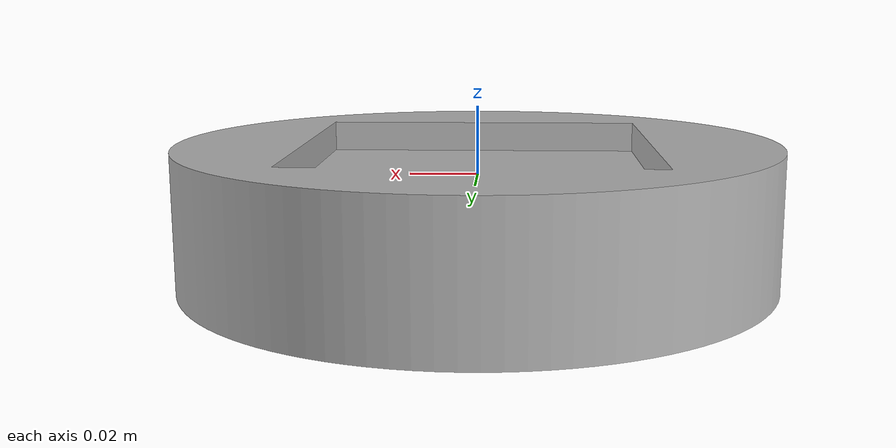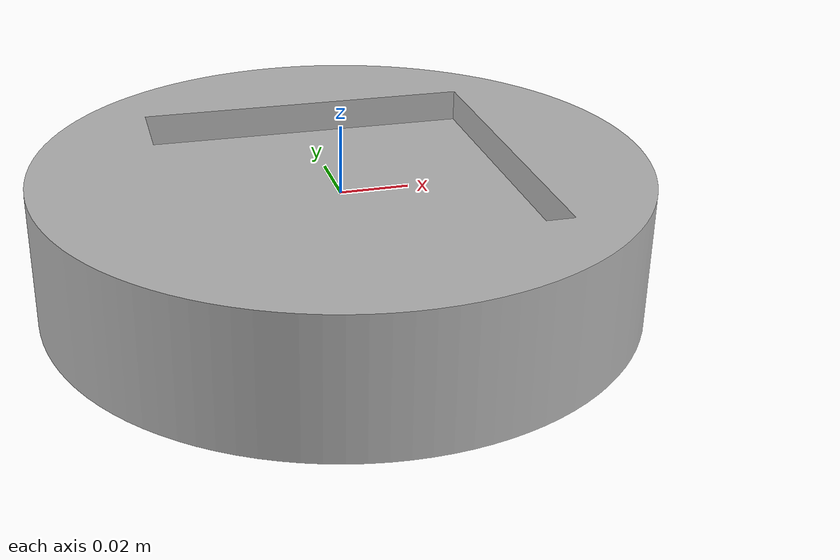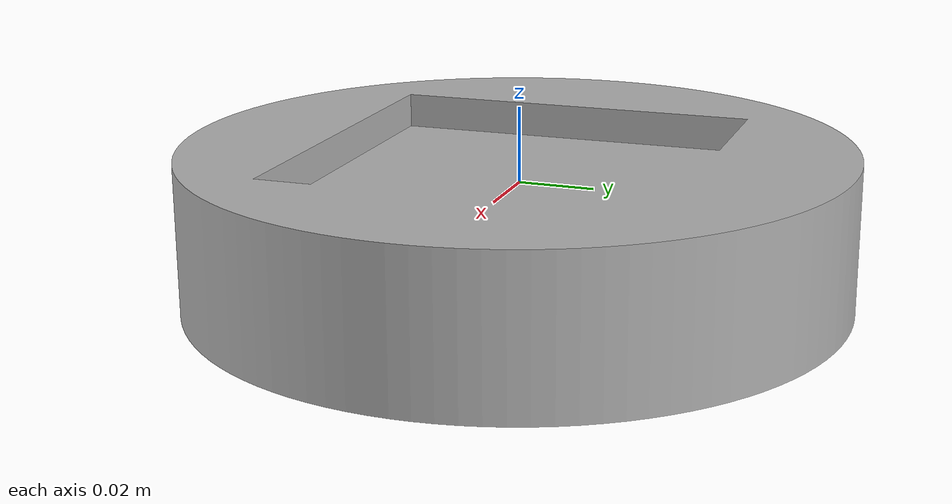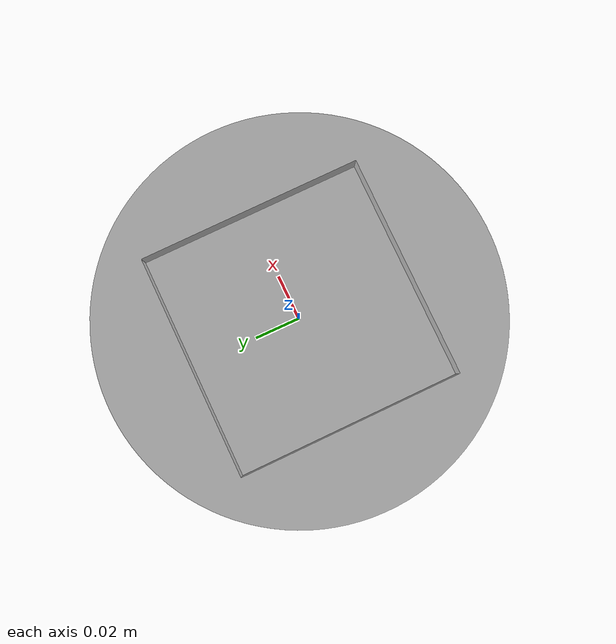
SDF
<?xml version='1.0' encoding='utf-8'?>
<sdf version="1.11">
  <model name="assembly_robot">
    <link name="base_link">
      <inertial>
        <pose>-0.15327864958996903 -0.00157843797029286 0.17813161632602856 0 0 0</pose>
        <mass>26.261576001701442</mass>
        <inertia>
          <ixx>0.737589</ixx>
          <iyy>1.70961</iyy>
          <izz>1.332764</izz>
          <ixy>0.004583</ixy>
          <ixz>0.245481</ixz>
          <iyz>-0.004624</iyz>
        </inertia>
      </inertial>
      <visual name="base_link_visual">
        <pose>0 0 0 0 0 0</pose>
        <geometry>
          <mesh>
            <uri>model://assembly_robot/meshes/base_link.stl</uri>
            <scale>0.001 0.001 0.001</scale>
          </mesh>
        </geometry>
        <material>
          <diffuse>0.7 0.7 0.7 1.0</diffuse>
          <ambient>0.7 0.7 0.7 1.0</ambient>
        </material>
      </visual>
      <collision name="base_link_collision">
        <pose>0 0 0 0 0 0</pose>
        <geometry>
          <mesh>
            <uri>model://assembly_robot/meshes/base_link.stl</uri>
            <scale>0.001 0.001 0.001</scale>
          </mesh>
        </geometry>
      </collision>
    </link>
  </model>
</sdf>
